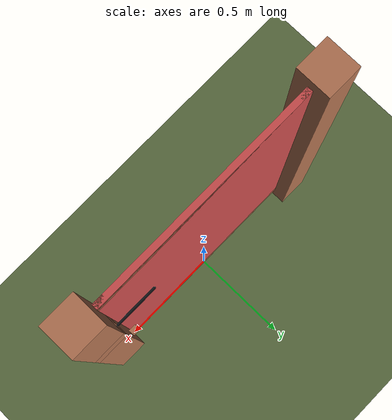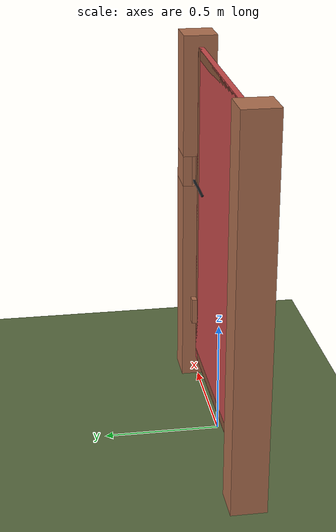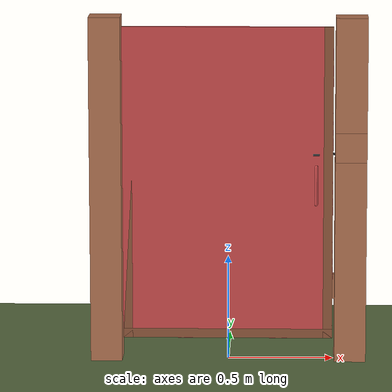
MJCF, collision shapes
<?xml version="1.0" ?>
<mujoco model="db0281_gate_swing_minimal">
  <compiler angle="radian" meshdir="../../hardware" texturedir="../../textures" autolimits="true" inertiafromgeom="false"/>
  <option timestep="0.002" integrator="implicitfast" cone="elliptic" impratio="10" noslip_iterations="3">
    <flag multiccd="enable"/>
  </option>
  <size memory="16M"/>
  <default>
    <geom condim="4" solref="0.005 1" solimp="0.95 0.99 0.001"/>
    <joint solreflimit="0.005 1" solimplimit="0.95 0.99 0.001"/>
    <tendon solreflimit="0.005 1"/>
    <equality solref="0.002 1"/>
  </default>
  <visual>
    <headlight ambient="0.4 0.4 0.4" diffuse="0.7 0.7 0.7" specular="0.2 0.2 0.2"/>
    <quality shadowsize="4096"/>
    <map znear="0.01" zfar="60"/>
  </visual>
  <asset>
    <mesh name="thumb_latch_0073ea78ed" file="thumb_latch_0073ea78ed.obj"/>
    <material name="mat_floor" rgba="0.35 0.42 0.25 1" specular="0.2" shininess="0.15" reflectance="0"/>
    <material name="mat_wall" rgba="0.78 0.76 0.7 1" specular="0.2" shininess="0.1" reflectance="0"/>
    <material name="mat_leaf" rgba="0.561 0.342 0.231 1" specular="0.2" shininess="0.4" reflectance="0"/>
    <material name="mat_hinge" rgba="0.65 0.66 0.68 1" specular="0.74" shininess="0.5" reflectance="0.36"/>
    <material name="mat_op_wrought_iron" rgba="0.08 0.08 0.09 1" specular="0.56" shininess="0.25" reflectance="0.24"/>
    <material name="mat_frame" rgba="0.7 0.45 0.32 1" specular="0.2" shininess="0.4" reflectance="0"/>
    <material name="mat_fence" rgba="0.7 0.45 0.32 1" specular="0.2" shininess="0.4" reflectance="0"/>
    <texture name="skybox" type="skybox" builtin="gradient" rgb1="0.6 0.7 0.85" rgb2="0.9 0.92 0.95" width="256" height="256"/>
  </asset>
  <worldbody>
    <light name="sun" pos="1.5 -2.5 4" dir="-0.3 0.5 -0.8" directional="true" diffuse="0.8 0.8 0.8" specular="0.3 0.3 0.3" castshadow="true"/>
    <light name="fill" pos="-1.5 2.5 3" dir="0.3 -0.5 -0.7" directional="true" diffuse="0.35 0.35 0.4" castshadow="false"/>
    <camera name="robot_view" pos="0 -2.05 1.334" xyaxes="1 0 0 0 0.26963 0.962964" fovy="52"/>
    <camera name="far_view" pos="0 2.05 1.334" xyaxes="-1 0 0 0 -0.26963 0.962964" fovy="52"/>
    <camera name="iso" pos="1.558 -1.722 1.662" xyaxes="0.741536 0.670913 0 -0.242917 0.268487 0.932151" fovy="46"/>
    <camera name="detail_handle" pos="0.597 -0.8475 1.13" xyaxes="0.97561 0.219512 0 -0.070934 0.315262 0.94635" fovy="38"/>
    <geom name="floor" type="box" size="6 6 0.05" pos="0 0 -0.05" material="mat_floor" group="0" contype="1" conaffinity="1" friction="0.8 0.005 0.0001" density="2400"/>
    <geom name="post_hinge" type="box" size="0.075 0.075 0.825" pos="-0.581 0 0.825" material="mat_frame" group="0" contype="1" conaffinity="1" friction="0.6 0.005 0.0001" density="350"/>
    <geom name="post_1035_wall_n" type="box" size="0.075 0.02025 0.07" pos="0.581 0.05475 1.035" material="mat_frame" group="0" contype="1" conaffinity="1" friction="0.6 0.005 0.0001" density="350"/>
    <geom name="post_1035_wall_p" type="box" size="0.075 0.04475 0.07" pos="0.581 -0.03025 1.035" material="mat_frame" group="0" contype="1" conaffinity="1" friction="0.6 0.005 0.0001" density="350"/>
    <geom name="post_1035_back" type="box" size="0.065 0.01 0.07" pos="0.591 0.0245 1.035" material="mat_frame" group="0" contype="1" conaffinity="1" friction="0.6 0.005 0.0001" density="350"/>
    <geom name="post_latch_0" type="box" size="0.075 0.075 0.4825" pos="0.581 0 0.4825" material="mat_frame" group="0" contype="1" conaffinity="1" friction="0.6 0.005 0.0001" density="350"/>
    <geom name="post_latch_1" type="box" size="0.075 0.075 0.2725" pos="0.581 0 1.3775" material="mat_frame" group="0" contype="1" conaffinity="1" friction="0.6 0.005 0.0001" density="350"/>
    <geom name="gate_stop" type="box" size="0.02 0.012 0.06" pos="0.486 0.0245 0.35" material="mat_frame" group="0" contype="1" conaffinity="1" friction="0.6 0.005 0.0001" density="350"/>
    <site name="approach_point" pos="0 -1.5 0" quat="1 0 0 0" size="0.05" rgba="0.2 0.9 0.2 0.5" group="4"/>
    <site name="goal_point" pos="0 1.5 0" quat="1 0 0 0" size="0.05" rgba="0.2 0.9 0.2 0.5" group="4"/>
    <site name="door_plane_center" pos="0 0 0.76" quat="1 0 0 0" size="0.02" rgba="0.2 0.9 0.2 0.5" group="4"/>
    <body name="leaf" pos="-0.506 0 0">
      <inertial pos="0.527087 -0.001856 0.85" mass="14.105048" quat="0.502083 0.497909 -0.502083 0.497909" diaginertia="1.244754667 2.499246372 3.740814617"/>
      <joint name="leaf_hinge" type="hinge" axis="0 0 -1" pos="0.003 -0.05 0" limited="true" range="0 1.570796" damping="0.3209" frictionloss="0.759236" armature="0.02"/>
      <geom name="leaf_slab_col" type="box" size="0.5 0.0125 0.75" pos="0.503 0 0.85" material="mat_leaf" group="3" contype="1" conaffinity="1" rgba="0.8 0.3 0.3 0.25" friction="0.35 0.005 0.0001" density="1"/>
      <geom name="leaf_rail_b" type="box" size="0.5 0.0125 0.0225" pos="0.503 0 0.1225" material="mat_leaf" group="1" contype="0" conaffinity="0" density="1"/>
      <geom name="leaf_rail_t" type="box" size="0.5 0.0125 0.0225" pos="0.503 0 1.5775" material="mat_leaf" group="1" contype="0" conaffinity="0" density="1"/>
      <geom name="leaf_stile_h" type="box" size="0.0225 0.0125 0.75" pos="0.0255 0 0.85" material="mat_leaf" group="1" contype="0" conaffinity="0" density="1"/>
      <geom name="leaf_stile_l" type="box" size="0.0225 0.0125 0.75" pos="0.9805 0 0.85" material="mat_leaf" group="1" contype="0" conaffinity="0" density="1"/>
      <geom name="leaf_suffolk_grip" type="mesh" mesh="thumb_latch_0073ea78ed" pos="0.923 -0.0125 0.85" quat="0.707107 0.707107 0 0" material="mat_op_wrought_iron" group="1" contype="0" conaffinity="0" density="7000"/>
      <geom name="leaf_suffolk_grip_col" type="capsule" size="0.008 0.09" pos="0.923 -0.0475 0.85" material="mat_op_wrought_iron" group="3" contype="1" conaffinity="1" rgba="0.8 0.3 0.3 0.25" friction="0.7 0.01 0.0001" density="7000"/>
      <site name="leaf_grip_n" pos="0.923 -0.0475 0.85" quat="1 0 0 0" size="0.012" rgba="0.2 0.9 0.2 0.5" group="4"/>
      <site name="leaf_edge_mid" pos="1.003 0 0.75" quat="1 0 0 0" size="0.02" rgba="0.2 0.9 0.2 0.5" group="4"/>
      <body name="leaf_thumb" pos="0.923 -0.0125 0.995">
        <inertial pos="0 -0.02 0" mass="0.03528" quat="1 0 0 0" diaginertia="0.000002411 0.000002752 0.000004951"/>
        <joint name="leaf_thumb_hinge" type="hinge" axis="1 0 0" limited="true" range="0 0.3" damping="0.155195" frictionloss="0.032" stiffness="0.6" springref="-0.5" armature="0.01"/>
        <geom name="leaf_thumb_geom" type="box" size="0.015 0.014 0.003" pos="0 -0.02 0" material="mat_op_wrought_iron" group="0" contype="1" conaffinity="1" friction="0.6 0.005 0.0001" density="7000"/>
        <site name="leaf_thumb_push" pos="0 -0.024 0.005" quat="1 0 0 0" size="0.01" rgba="0.2 0.9 0.2 0.5" group="4"/>
      </body>
      <body name="leaf_latch_bar" pos="0.803 0.0245 0.99">
        <inertial pos="0.106 0 0" mass="0.25" quat="0 0 0.707107 0.707107" diaginertia="0.000004465 0.000904065 0.000904065"/>
        <joint name="leaf_latch_bar_hinge" type="hinge" axis="0 -1 0" limited="true" range="0 0.6" damping="0.01" frictionloss="0.01" armature="0.005"/>
        <geom name="leaf_latch_bar_geom" type="capsule" size="0.006 0.1" pos="0.106 0 0" quat="0.707107 0 0.707107 0" material="mat_op_wrought_iron" group="0" contype="1" conaffinity="1" friction="0.6 0.005 0.0001" density="7850"/>
      </body>
    </body>
  </worldbody>
  <equality>
    <joint name="leaf_thumb_couple" joint1="leaf_latch_bar_hinge" joint2="leaf_thumb_hinge" polycoef="0 2 0 0 0" active="true"/>
  </equality>
  <sensor>
    <jointpos name="leaf_hinge_pos" joint="leaf_hinge"/>
    <jointvel name="leaf_hinge_vel" joint="leaf_hinge"/>
    <jointpos name="leaf_thumb_hinge_pos" joint="leaf_thumb_hinge"/>
    <jointvel name="leaf_thumb_hinge_vel" joint="leaf_thumb_hinge"/>
    <jointpos name="leaf_latch_bar_hinge_pos" joint="leaf_latch_bar_hinge"/>
    <jointvel name="leaf_latch_bar_hinge_vel" joint="leaf_latch_bar_hinge"/>
  </sensor>
</mujoco>
